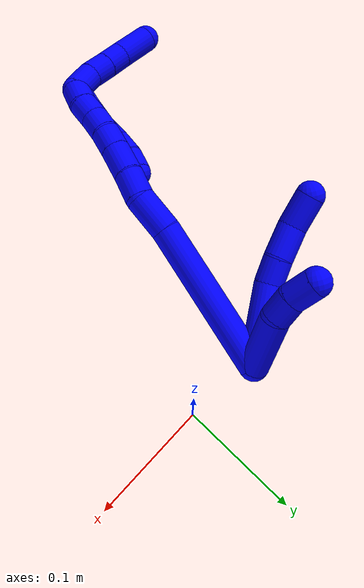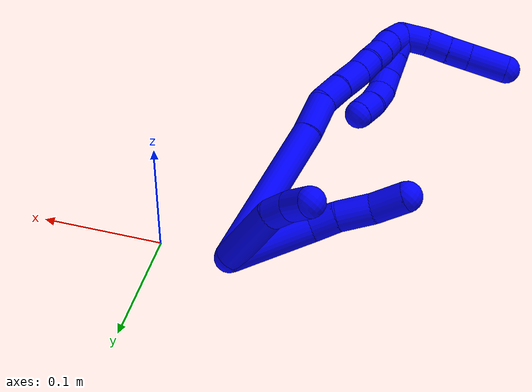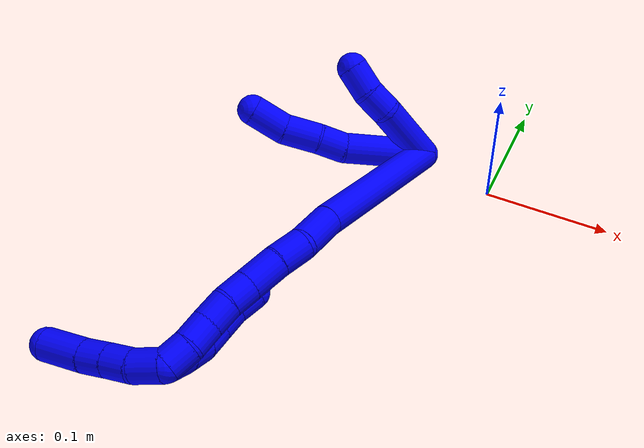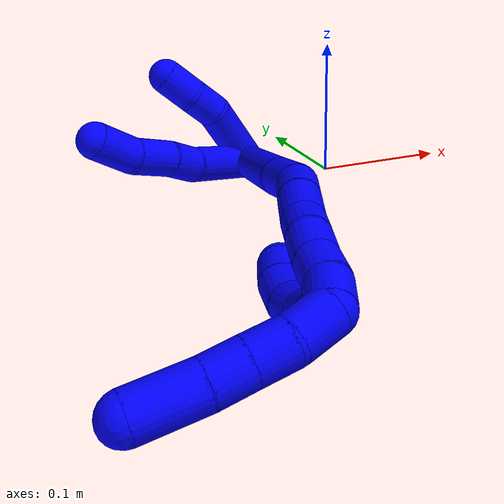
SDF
<sdf version="1.7">
 <world name="default">
  <model name="1">
   <static>0</static>
   <link name="1">
    <collision name="collision-cylinder-e_1_2_8">
     <pose>-0.016127 0.005011 0.029922 -0.16593 -0.488571 0.041449</pose>
     <geometry><cylinder><radius>0.0125</radius><length>0.068716</length></cylinder></geometry>
     <surface>
      <friction><ode><mu>1.16</mu><mu2>1.16</mu2><slip1>0</slip1><slip2>0</slip2></ode></friction>
      <contact><ode><kp>1e+06</kp><kd>1</kd><max_vel>0</max_vel><min_depth>0.001</min_depth></ode></contact>
     </surface>
    </collision>
    <visual name="visual-cylinder-e_1_2_8">
     <pose>-0.016127 0.005011 0.029922 -0.16593 -0.488571 0.041449</pose>
     <geometry><cylinder><radius>0.0125</radius><length>0.068716</length></cylinder></geometry>
     <material><ambient>0 0 1 1</ambient></material>
    </visual>
    <collision name="collision-cylinder-e_2_8_9">
     <pose>-0.036599 0.014389 0.069245 -0.434826 -0.397012 0.088814</pose>
     <geometry><cylinder><radius>0.0125</radius><length>0.02248</length></cylinder></geometry>
     <surface>
      <friction><ode><mu>1.16</mu><mu2>1.16</mu2><slip1>0</slip1><slip2>0</slip2></ode></friction>
      <contact><ode><kp>1e+06</kp><kd>1</kd><max_vel>0</max_vel><min_depth>0.001</min_depth></ode></contact>
     </surface>
    </collision>
    <visual name="visual-cylinder-e_2_8_9">
     <pose>-0.036599 0.014389 0.069245 -0.434826 -0.397012 0.088814</pose>
     <geometry><cylinder><radius>0.0125</radius><length>0.02248</length></cylinder></geometry>
     <material><ambient>0 0 1 1</ambient></material>
    </visual>
    <collision name="collision-cylinder-e_3_9_10">
     <pose>-0.0487 0.02391 0.089936 -0.428348 -0.558482 0.124573</pose>
     <geometry><cylinder><radius>0.0125</radius><length>0.02927</length></cylinder></geometry>
     <surface>
      <friction><ode><mu>1.16</mu><mu2>1.16</mu2><slip1>0</slip1><slip2>0</slip2></ode></friction>
      <contact><ode><kp>1e+06</kp><kd>1</kd><max_vel>0</max_vel><min_depth>0.001</min_depth></ode></contact>
     </surface>
    </collision>
    <visual name="visual-cylinder-e_3_9_10">
     <pose>-0.0487 0.02391 0.089936 -0.428348 -0.558482 0.124573</pose>
     <geometry><cylinder><radius>0.0125</radius><length>0.02927</length></cylinder></geometry>
     <material><ambient>0 0 1 1</ambient></material>
    </visual>
    <collision name="collision-cylinder-e_4_10_6">
     <pose>-0.061552 0.037446 0.112265 -0.649314 -0.352377 0.119698</pose>
     <geometry><cylinder><radius>0.0125</radius><length>0.029534</length></cylinder></geometry>
     <surface>
      <friction><ode><mu>1.16</mu><mu2>1.16</mu2><slip1>0</slip1><slip2>0</slip2></ode></friction>
      <contact><ode><kp>1e+06</kp><kd>1</kd><max_vel>0</max_vel><min_depth>0.001</min_depth></ode></contact>
     </surface>
    </collision>
    <visual name="visual-cylinder-e_4_10_6">
     <pose>-0.061552 0.037446 0.112265 -0.649314 -0.352377 0.119698</pose>
     <geometry><cylinder><radius>0.0125</radius><length>0.029534</length></cylinder></geometry>
     <material><ambient>0 0 1 1</ambient></material>
    </visual>
    <collision name="collision-cylinder-e_1_2_11">
     <pose>0.00219 0.017282 0.021748 -0.671466 0.07868 -0.027467</pose>
     <geometry><cylinder><radius>0.0125</radius><length>0.055729</length></cylinder></geometry>
     <surface>
      <friction><ode><mu>1.16</mu><mu2>1.16</mu2><slip1>0</slip1><slip2>0</slip2></ode></friction>
      <contact><ode><kp>1e+06</kp><kd>1</kd><max_vel>0</max_vel><min_depth>0.001</min_depth></ode></contact>
     </surface>
    </collision>
    <visual name="visual-cylinder-e_1_2_11">
     <pose>0.00219 0.017282 0.021748 -0.671466 0.07868 -0.027467</pose>
     <geometry><cylinder><radius>0.0125</radius><length>0.055729</length></cylinder></geometry>
     <material><ambient>0 0 1 1</ambient></material>
    </visual>
    <collision name="collision-cylinder-e_2_11_12">
     <pose>0.002173 0.04215 0.050283 -0.84098 -0.21355 0.095782</pose>
     <geometry><cylinder><radius>0.0125</radius><length>0.020833</length></cylinder></geometry>
     <surface>
      <friction><ode><mu>1.16</mu><mu2>1.16</mu2><slip1>0</slip1><slip2>0</slip2></ode></friction>
      <contact><ode><kp>1e+06</kp><kd>1</kd><max_vel>0</max_vel><min_depth>0.001</min_depth></ode></contact>
     </surface>
    </collision>
    <visual name="visual-cylinder-e_2_11_12">
     <pose>0.002173 0.04215 0.050283 -0.84098 -0.21355 0.095782</pose>
     <geometry><cylinder><radius>0.0125</radius><length>0.020833</length></cylinder></geometry>
     <material><ambient>0 0 1 1</ambient></material>
    </visual>
    <collision name="collision-cylinder-e_3_12_5">
     <pose>-0.002565 0.060053 0.062022 -1.12326 -0.217627 0.137263</pose>
     <geometry><cylinder><radius>0.0125</radius><length>0.023438</length></cylinder></geometry>
     <surface>
      <friction><ode><mu>1.16</mu><mu2>1.16</mu2><slip1>0</slip1><slip2>0</slip2></ode></friction>
      <contact><ode><kp>1e+06</kp><kd>1</kd><max_vel>0</max_vel><min_depth>0.001</min_depth></ode></contact>
     </surface>
    </collision>
    <visual name="visual-cylinder-e_3_12_5">
     <pose>-0.002565 0.060053 0.062022 -1.12326 -0.217627 0.137263</pose>
     <geometry><cylinder><radius>0.0125</radius><length>0.023438</length></cylinder></geometry>
     <material><ambient>0 0 1 1</ambient></material>
    </visual>
    <collision name="collision-cylinder-e_1_2_13">
     <pose>0.003767 -0.02588 0.061416 0.398811 0.056456 0.011412</pose>
     <geometry><cylinder><radius>0.0125</radius><length>0.133504</length></cylinder></geometry>
     <surface>
      <friction><ode><mu>1.16</mu><mu2>1.16</mu2><slip1>0</slip1><slip2>0</slip2></ode></friction>
      <contact><ode><kp>1e+06</kp><kd>1</kd><max_vel>0</max_vel><min_depth>0.001</min_depth></ode></contact>
     </surface>
    </collision>
    <visual name="visual-cylinder-e_1_2_13">
     <pose>0.003767 -0.02588 0.061416 0.398811 0.056456 0.011412</pose>
     <geometry><cylinder><radius>0.0125</radius><length>0.133504</length></cylinder></geometry>
     <material><ambient>0 0 1 1</ambient></material>
    </visual>
    <collision name="collision-cylinder-e_2_13_14">
     <pose>0.009622 -0.059782 0.137806 0.491824 0.122326 0.030739</pose>
     <geometry><cylinder><radius>0.0125</radius><length>0.034231</length></cylinder></geometry>
     <surface>
      <friction><ode><mu>1.16</mu><mu2>1.16</mu2><slip1>0</slip1><slip2>0</slip2></ode></friction>
      <contact><ode><kp>1e+06</kp><kd>1</kd><max_vel>0</max_vel><min_depth>0.001</min_depth></ode></contact>
     </surface>
    </collision>
    <visual name="visual-cylinder-e_2_13_14">
     <pose>0.009622 -0.059782 0.137806 0.491824 0.122326 0.030739</pose>
     <geometry><cylinder><radius>0.0125</radius><length>0.034231</length></cylinder></geometry>
     <material><ambient>0 0 1 1</ambient></material>
    </visual>
    <collision name="collision-cylinder-e_3_14_15">
     <pose>0.009191 -0.073282 0.163334 0.47868 -0.208744 -0.051112</pose>
     <geometry><cylinder><radius>0.0125</radius><length>0.02431</length></cylinder></geometry>
     <surface>
      <friction><ode><mu>1.16</mu><mu2>1.16</mu2><slip1>0</slip1><slip2>0</slip2></ode></friction>
      <contact><ode><kp>1e+06</kp><kd>1</kd><max_vel>0</max_vel><min_depth>0.001</min_depth></ode></contact>
     </surface>
    </collision>
    <visual name="visual-cylinder-e_3_14_15">
     <pose>0.009191 -0.073282 0.163334 0.47868 -0.208744 -0.051112</pose>
     <geometry><cylinder><radius>0.0125</radius><length>0.02431</length></cylinder></geometry>
     <material><ambient>0 0 1 1</ambient></material>
    </visual>
    <collision name="collision-cylinder-e_4_15_16">
     <pose>0.003272 -0.086154 0.185184 0.579675 -0.246775 -0.073939</pose>
     <geometry><cylinder><radius>0.0125</radius><length>0.027845</length></cylinder></geometry>
     <surface>
      <friction><ode><mu>1.16</mu><mu2>1.16</mu2><slip1>0</slip1><slip2>0</slip2></ode></friction>
      <contact><ode><kp>1e+06</kp><kd>1</kd><max_vel>0</max_vel><min_depth>0.001</min_depth></ode></contact>
     </surface>
    </collision>
    <visual name="visual-cylinder-e_4_15_16">
     <pose>0.003272 -0.086154 0.185184 0.579675 -0.246775 -0.073939</pose>
     <geometry><cylinder><radius>0.0125</radius><length>0.027845</length></cylinder></geometry>
     <material><ambient>0 0 1 1</ambient></material>
    </visual>
    <collision name="collision-cylinder-e_5_16_17">
     <pose>-0.00176 -0.098675 0.204938 0.544805 -0.163384 -0.045735</pose>
     <geometry><cylinder><radius>0.0125</radius><length>0.020049</length></cylinder></geometry>
     <surface>
      <friction><ode><mu>1.16</mu><mu2>1.16</mu2><slip1>0</slip1><slip2>0</slip2></ode></friction>
      <contact><ode><kp>1e+06</kp><kd>1</kd><max_vel>0</max_vel><min_depth>0.001</min_depth></ode></contact>
     </surface>
    </collision>
    <visual name="visual-cylinder-e_5_16_17">
     <pose>-0.00176 -0.098675 0.204938 0.544805 -0.163384 -0.045735</pose>
     <geometry><cylinder><radius>0.0125</radius><length>0.020049</length></cylinder></geometry>
     <material><ambient>0 0 1 1</ambient></material>
    </visual>
    <collision name="collision-cylinder-e_6_17_18">
     <pose>-0.005635 -0.110251 0.220712 0.722678 -0.226196 -0.0858</pose>
     <geometry><cylinder><radius>0.0125</radius><length>0.020015</length></cylinder></geometry>
     <surface>
      <friction><ode><mu>1.16</mu><mu2>1.16</mu2><slip1>0</slip1><slip2>0</slip2></ode></friction>
      <contact><ode><kp>1e+06</kp><kd>1</kd><max_vel>0</max_vel><min_depth>0.001</min_depth></ode></contact>
     </surface>
    </collision>
    <visual name="visual-cylinder-e_6_17_18">
     <pose>-0.005635 -0.110251 0.220712 0.722678 -0.226196 -0.0858</pose>
     <geometry><cylinder><radius>0.0125</radius><length>0.020015</length></cylinder></geometry>
     <material><ambient>0 0 1 1</ambient></material>
    </visual>
    <collision name="collision-cylinder-e_7_18_19">
     <pose>-0.009195 -0.12316 0.235574 0.707818 -0.131732 -0.048731</pose>
     <geometry><cylinder><radius>0.0125</radius><length>0.02004</length></cylinder></geometry>
     <surface>
      <friction><ode><mu>1.16</mu><mu2>1.16</mu2><slip1>0</slip1><slip2>0</slip2></ode></friction>
      <contact><ode><kp>1e+06</kp><kd>1</kd><max_vel>0</max_vel><min_depth>0.001</min_depth></ode></contact>
     </surface>
    </collision>
    <visual name="visual-cylinder-e_7_18_19">
     <pose>-0.009195 -0.12316 0.235574 0.707818 -0.131732 -0.048731</pose>
     <geometry><cylinder><radius>0.0125</radius><length>0.02004</length></cylinder></geometry>
     <material><ambient>0 0 1 1</ambient></material>
    </visual>
    <collision name="collision-cylinder-e_8_19_1">
     <pose>-0.013851 -0.135175 0.250739 0.630261 -0.340329 -0.111912</pose>
     <geometry><cylinder><radius>0.0125</radius><length>0.020006</length></cylinder></geometry>
     <surface>
      <friction><ode><mu>1.16</mu><mu2>1.16</mu2><slip1>0</slip1><slip2>0</slip2></ode></friction>
      <contact><ode><kp>1e+06</kp><kd>1</kd><max_vel>0</max_vel><min_depth>0.001</min_depth></ode></contact>
     </surface>
    </collision>
    <visual name="visual-cylinder-e_8_19_1">
     <pose>-0.013851 -0.135175 0.250739 0.630261 -0.340329 -0.111912</pose>
     <geometry><cylinder><radius>0.0125</radius><length>0.020006</length></cylinder></geometry>
     <material><ambient>0 0 1 1</ambient></material>
    </visual>
    <collision name="collision-cylinder-e_1_1_20">
     <pose>-0.027749 -0.140197 0.264087 -0.093122 -1.07175 0.055325</pose>
     <geometry><cylinder><radius>0.0125</radius><length>0.024053</length></cylinder></geometry>
     <surface>
      <friction><ode><mu>1.16</mu><mu2>1.16</mu2><slip1>0</slip1><slip2>0</slip2></ode></friction>
      <contact><ode><kp>1e+06</kp><kd>1</kd><max_vel>0</max_vel><min_depth>0.001</min_depth></ode></contact>
     </surface>
    </collision>
    <visual name="visual-cylinder-e_1_1_20">
     <pose>-0.027749 -0.140197 0.264087 -0.093122 -1.07175 0.055325</pose>
     <geometry><cylinder><radius>0.0125</radius><length>0.024053</length></cylinder></geometry>
     <material><ambient>0 0 1 1</ambient></material>
    </visual>
    <collision name="collision-cylinder-e_2_20_21">
     <pose>-0.047768 -0.137304 0.273341 -0.589943 -1.14944 0.388594</pose>
     <geometry><cylinder><radius>0.0125</radius><length>0.020731</length></cylinder></geometry>
     <surface>
      <friction><ode><mu>1.16</mu><mu2>1.16</mu2><slip1>0</slip1><slip2>0</slip2></ode></friction>
      <contact><ode><kp>1e+06</kp><kd>1</kd><max_vel>0</max_vel><min_depth>0.001</min_depth></ode></contact>
     </surface>
    </collision>
    <visual name="visual-cylinder-e_2_20_21">
     <pose>-0.047768 -0.137304 0.273341 -0.589943 -1.14944 0.388594</pose>
     <geometry><cylinder><radius>0.0125</radius><length>0.020731</length></cylinder></geometry>
     <material><ambient>0 0 1 1</ambient></material>
    </visual>
    <collision name="collision-cylinder-e_3_21_22">
     <pose>-0.066393 -0.132774 0.280587 -0.527991 -1.13123 0.339869</pose>
     <geometry><cylinder><radius>0.0125</radius><length>0.020256</length></cylinder></geometry>
     <surface>
      <friction><ode><mu>1.16</mu><mu2>1.16</mu2><slip1>0</slip1><slip2>0</slip2></ode></friction>
      <contact><ode><kp>1e+06</kp><kd>1</kd><max_vel>0</max_vel><min_depth>0.001</min_depth></ode></contact>
     </surface>
    </collision>
    <visual name="visual-cylinder-e_3_21_22">
     <pose>-0.066393 -0.132774 0.280587 -0.527991 -1.13123 0.339869</pose>
     <geometry><cylinder><radius>0.0125</radius><length>0.020256</length></cylinder></geometry>
     <material><ambient>0 0 1 1</ambient></material>
    </visual>
    <collision name="collision-cylinder-e_4_22_4">
     <pose>-0.091088 -0.125544 0.290536 -0.682259 -1.09399 0.42583</pose>
     <geometry><cylinder><radius>0.0125</radius><length>0.034959</length></cylinder></geometry>
     <surface>
      <friction><ode><mu>1.16</mu><mu2>1.16</mu2><slip1>0</slip1><slip2>0</slip2></ode></friction>
      <contact><ode><kp>1e+06</kp><kd>1</kd><max_vel>0</max_vel><min_depth>0.001</min_depth></ode></contact>
     </surface>
    </collision>
    <visual name="visual-cylinder-e_4_22_4">
     <pose>-0.091088 -0.125544 0.290536 -0.682259 -1.09399 0.42583</pose>
     <geometry><cylinder><radius>0.0125</radius><length>0.034959</length></cylinder></geometry>
     <material><ambient>0 0 1 1</ambient></material>
    </visual>
    <collision name="collision-cylinder-e_1_1_23">
     <pose>-0.02024 -0.139047 0.248983 -2.96362 -0.310002 2.10393</pose>
     <geometry><cylinder><radius>0.0125</radius><length>0.02</length></cylinder></geometry>
     <surface>
      <friction><ode><mu>1.16</mu><mu2>1.16</mu2><slip1>0</slip1><slip2>0</slip2></ode></friction>
      <contact><ode><kp>1e+06</kp><kd>1</kd><max_vel>0</max_vel><min_depth>0.001</min_depth></ode></contact>
     </surface>
    </collision>
    <visual name="visual-cylinder-e_1_1_23">
     <pose>-0.02024 -0.139047 0.248983 -2.96362 -0.310002 2.10393</pose>
     <geometry><cylinder><radius>0.0125</radius><length>0.02</length></cylinder></geometry>
     <material><ambient>0 0 1 1</ambient></material>
    </visual>
    <collision name="collision-cylinder-e_2_23_24">
     <pose>-0.025965 -0.134634 0.230368 -2.85473 -0.270683 1.512</pose>
     <geometry><cylinder><radius>0.0125</radius><length>0.02</length></cylinder></geometry>
     <surface>
      <friction><ode><mu>1.16</mu><mu2>1.16</mu2><slip1>0</slip1><slip2>0</slip2></ode></friction>
      <contact><ode><kp>1e+06</kp><kd>1</kd><max_vel>0</max_vel><min_depth>0.001</min_depth></ode></contact>
     </surface>
    </collision>
    <visual name="visual-cylinder-e_2_23_24">
     <pose>-0.025965 -0.134634 0.230368 -2.85473 -0.270683 1.512</pose>
     <geometry><cylinder><radius>0.0125</radius><length>0.02</length></cylinder></geometry>
     <material><ambient>0 0 1 1</ambient></material>
    </visual>
    <collision name="collision-cylinder-e_3_24_25">
     <pose>-0.03057 -0.126836 0.212727 -2.59839 -0.194369 0.673496</pose>
     <geometry><cylinder><radius>0.0125</radius><length>0.02</length></cylinder></geometry>
     <surface>
      <friction><ode><mu>1.16</mu><mu2>1.16</mu2><slip1>0</slip1><slip2>0</slip2></ode></friction>
      <contact><ode><kp>1e+06</kp><kd>1</kd><max_vel>0</max_vel><min_depth>0.001</min_depth></ode></contact>
     </surface>
    </collision>
    <visual name="visual-cylinder-e_3_24_25">
     <pose>-0.03057 -0.126836 0.212727 -2.59839 -0.194369 0.673496</pose>
     <geometry><cylinder><radius>0.0125</radius><length>0.02</length></cylinder></geometry>
     <material><ambient>0 0 1 1</ambient></material>
    </visual>
    <collision name="collision-cylinder-e_4_25_26">
     <pose>-0.031599 -0.115508 0.196579 -2.46225 0.090423 -0.25468</pose>
     <geometry><cylinder><radius>0.0125</radius><length>0.02</length></cylinder></geometry>
     <surface>
      <friction><ode><mu>1.16</mu><mu2>1.16</mu2><slip1>0</slip1><slip2>0</slip2></ode></friction>
      <contact><ode><kp>1e+06</kp><kd>1</kd><max_vel>0</max_vel><min_depth>0.001</min_depth></ode></contact>
     </surface>
    </collision>
    <visual name="visual-cylinder-e_4_25_26">
     <pose>-0.031599 -0.115508 0.196579 -2.46225 0.090423 -0.25468</pose>
     <geometry><cylinder><radius>0.0125</radius><length>0.02</length></cylinder></geometry>
     <material><ambient>0 0 1 1</ambient></material>
    </visual>
    <collision name="collision-cylinder-e_5_26_3">
     <pose>-0.028172 -0.104206 0.180574 -2.59319 0.255067 -0.855439</pose>
     <geometry><cylinder><radius>0.0125</radius><length>0.02</length></cylinder></geometry>
     <surface>
      <friction><ode><mu>1.16</mu><mu2>1.16</mu2><slip1>0</slip1><slip2>0</slip2></ode></friction>
      <contact><ode><kp>1e+06</kp><kd>1</kd><max_vel>0</max_vel><min_depth>0.001</min_depth></ode></contact>
     </surface>
    </collision>
    <visual name="visual-cylinder-e_5_26_3">
     <pose>-0.028172 -0.104206 0.180574 -2.59319 0.255067 -0.855439</pose>
     <geometry><cylinder><radius>0.0125</radius><length>0.02</length></cylinder></geometry>
     <material><ambient>0 0 1 1</ambient></material>
    </visual>
    <collision name="collision-sphere-3">
     <pose>-0.025649 -0.099161 0.172316 0 -0 0</pose>
     <geometry><sphere><radius>0.0125</radius></sphere></geometry>
     <surface>
      <friction><ode><mu>1.16</mu><mu2>1.16</mu2><slip1>0</slip1><slip2>0</slip2></ode></friction>
      <contact><ode><kp>1e+06</kp><kd>1</kd><max_vel>0</max_vel><min_depth>0.001</min_depth></ode></contact>
     </surface>
    </collision>
    <visual name="visual-sphere-3">
     <pose>-0.025649 -0.099161 0.172316 0 -0 0</pose>
     <geometry><sphere><radius>0.0125</radius></sphere></geometry>
     <material><ambient>0 0 1 1</ambient></material>
    </visual>
    <collision name="collision-sphere-26">
     <pose>-0.030696 -0.10925 0.188831 0 -0 0</pose>
     <geometry><sphere><radius>0.0125</radius></sphere></geometry>
     <surface>
      <friction><ode><mu>1.16</mu><mu2>1.16</mu2><slip1>0</slip1><slip2>0</slip2></ode></friction>
      <contact><ode><kp>1e+06</kp><kd>1</kd><max_vel>0</max_vel><min_depth>0.001</min_depth></ode></contact>
     </surface>
    </collision>
    <visual name="visual-sphere-26">
     <pose>-0.030696 -0.10925 0.188831 0 -0 0</pose>
     <geometry><sphere><radius>0.0125</radius></sphere></geometry>
     <material><ambient>0 0 1 1</ambient></material>
    </visual>
    <collision name="collision-sphere-25">
     <pose>-0.032502 -0.121765 0.204327 0 -0 0</pose>
     <geometry><sphere><radius>0.0125</radius></sphere></geometry>
     <surface>
      <friction><ode><mu>1.16</mu><mu2>1.16</mu2><slip1>0</slip1><slip2>0</slip2></ode></friction>
      <contact><ode><kp>1e+06</kp><kd>1</kd><max_vel>0</max_vel><min_depth>0.001</min_depth></ode></contact>
     </surface>
    </collision>
    <visual name="visual-sphere-25">
     <pose>-0.032502 -0.121765 0.204327 0 -0 0</pose>
     <geometry><sphere><radius>0.0125</radius></sphere></geometry>
     <material><ambient>0 0 1 1</ambient></material>
    </visual>
    <collision name="collision-sphere-24">
     <pose>-0.028639 -0.131908 0.221126 0 -0 0</pose>
     <geometry><sphere><radius>0.0125</radius></sphere></geometry>
     <surface>
      <friction><ode><mu>1.16</mu><mu2>1.16</mu2><slip1>0</slip1><slip2>0</slip2></ode></friction>
      <contact><ode><kp>1e+06</kp><kd>1</kd><max_vel>0</max_vel><min_depth>0.001</min_depth></ode></contact>
     </surface>
    </collision>
    <visual name="visual-sphere-24">
     <pose>-0.028639 -0.131908 0.221126 0 -0 0</pose>
     <geometry><sphere><radius>0.0125</radius></sphere></geometry>
     <material><ambient>0 0 1 1</ambient></material>
    </visual>
    <collision name="collision-sphere-23">
     <pose>-0.023291 -0.137361 0.23961 0 -0 0</pose>
     <geometry><sphere><radius>0.0125</radius></sphere></geometry>
     <surface>
      <friction><ode><mu>1.16</mu><mu2>1.16</mu2><slip1>0</slip1><slip2>0</slip2></ode></friction>
      <contact><ode><kp>1e+06</kp><kd>1</kd><max_vel>0</max_vel><min_depth>0.001</min_depth></ode></contact>
     </surface>
    </collision>
    <visual name="visual-sphere-23">
     <pose>-0.023291 -0.137361 0.23961 0 -0 0</pose>
     <geometry><sphere><radius>0.0125</radius></sphere></geometry>
     <material><ambient>0 0 1 1</ambient></material>
    </visual>
    <collision name="collision-sphere-4">
     <pose>-0.106618 -0.120486 0.296763 0 -0 0</pose>
     <geometry><sphere><radius>0.0125</radius></sphere></geometry>
     <surface>
      <friction><ode><mu>1.16</mu><mu2>1.16</mu2><slip1>0</slip1><slip2>0</slip2></ode></friction>
      <contact><ode><kp>1e+06</kp><kd>1</kd><max_vel>0</max_vel><min_depth>0.001</min_depth></ode></contact>
     </surface>
    </collision>
    <visual name="visual-sphere-4">
     <pose>-0.106618 -0.120486 0.296763 0 -0 0</pose>
     <geometry><sphere><radius>0.0125</radius></sphere></geometry>
     <material><ambient>0 0 1 1</ambient></material>
    </visual>
    <collision name="collision-sphere-22">
     <pose>-0.075558 -0.130602 0.28431 0 -0 0</pose>
     <geometry><sphere><radius>0.0125</radius></sphere></geometry>
     <surface>
      <friction><ode><mu>1.16</mu><mu2>1.16</mu2><slip1>0</slip1><slip2>0</slip2></ode></friction>
      <contact><ode><kp>1e+06</kp><kd>1</kd><max_vel>0</max_vel><min_depth>0.001</min_depth></ode></contact>
     </surface>
    </collision>
    <visual name="visual-sphere-22">
     <pose>-0.075558 -0.130602 0.28431 0 -0 0</pose>
     <geometry><sphere><radius>0.0125</radius></sphere></geometry>
     <material><ambient>0 0 1 1</ambient></material>
    </visual>
    <collision name="collision-sphere-21">
     <pose>-0.057227 -0.134945 0.276864 0 -0 0</pose>
     <geometry><sphere><radius>0.0125</radius></sphere></geometry>
     <surface>
      <friction><ode><mu>1.16</mu><mu2>1.16</mu2><slip1>0</slip1><slip2>0</slip2></ode></friction>
      <contact><ode><kp>1e+06</kp><kd>1</kd><max_vel>0</max_vel><min_depth>0.001</min_depth></ode></contact>
     </surface>
    </collision>
    <visual name="visual-sphere-21">
     <pose>-0.057227 -0.134945 0.276864 0 -0 0</pose>
     <geometry><sphere><radius>0.0125</radius></sphere></geometry>
     <material><ambient>0 0 1 1</ambient></material>
    </visual>
    <collision name="collision-sphere-20">
     <pose>-0.038309 -0.139662 0.269818 0 -0 0</pose>
     <geometry><sphere><radius>0.0125</radius></sphere></geometry>
     <surface>
      <friction><ode><mu>1.16</mu><mu2>1.16</mu2><slip1>0</slip1><slip2>0</slip2></ode></friction>
      <contact><ode><kp>1e+06</kp><kd>1</kd><max_vel>0</max_vel><min_depth>0.001</min_depth></ode></contact>
     </surface>
    </collision>
    <visual name="visual-sphere-20">
     <pose>-0.038309 -0.139662 0.269818 0 -0 0</pose>
     <geometry><sphere><radius>0.0125</radius></sphere></geometry>
     <material><ambient>0 0 1 1</ambient></material>
    </visual>
    <collision name="collision-sphere-11">
     <pose>0.00438 0.034563 0.043496 0 -0 0</pose>
     <geometry><sphere><radius>0.0125</radius></sphere></geometry>
     <surface>
      <friction><ode><mu>1.16</mu><mu2>1.16</mu2><slip1>0</slip1><slip2>0</slip2></ode></friction>
      <contact><ode><kp>1e+06</kp><kd>1</kd><max_vel>0</max_vel><min_depth>0.001</min_depth></ode></contact>
     </surface>
    </collision>
    <visual name="visual-sphere-11">
     <pose>0.00438 0.034563 0.043496 0 -0 0</pose>
     <geometry><sphere><radius>0.0125</radius></sphere></geometry>
     <material><ambient>0 0 1 1</ambient></material>
    </visual>
    <collision name="collision-sphere-6">
     <pose>-0.066648 0.045826 0.123304 0 -0 0</pose>
     <geometry><sphere><radius>0.0125</radius></sphere></geometry>
     <surface>
      <friction><ode><mu>1.16</mu><mu2>1.16</mu2><slip1>0</slip1><slip2>0</slip2></ode></friction>
      <contact><ode><kp>1e+06</kp><kd>1</kd><max_vel>0</max_vel><min_depth>0.001</min_depth></ode></contact>
     </surface>
    </collision>
    <visual name="visual-sphere-6">
     <pose>-0.066648 0.045826 0.123304 0 -0 0</pose>
     <geometry><sphere><radius>0.0125</radius></sphere></geometry>
     <material><ambient>0 0 1 1</ambient></material>
    </visual>
    <collision name="collision-sphere-10">
     <pose>-0.056455 0.029066 0.101226 0 -0 0</pose>
     <geometry><sphere><radius>0.0125</radius></sphere></geometry>
     <surface>
      <friction><ode><mu>1.16</mu><mu2>1.16</mu2><slip1>0</slip1><slip2>0</slip2></ode></friction>
      <contact><ode><kp>1e+06</kp><kd>1</kd><max_vel>0</max_vel><min_depth>0.001</min_depth></ode></contact>
     </surface>
    </collision>
    <visual name="visual-sphere-10">
     <pose>-0.056455 0.029066 0.101226 0 -0 0</pose>
     <geometry><sphere><radius>0.0125</radius></sphere></geometry>
     <material><ambient>0 0 1 1</ambient></material>
    </visual>
    <collision name="collision-sphere-9">
     <pose>-0.040945 0.018755 0.078646 0 -0 0</pose>
     <geometry><sphere><radius>0.0125</radius></sphere></geometry>
     <surface>
      <friction><ode><mu>1.16</mu><mu2>1.16</mu2><slip1>0</slip1><slip2>0</slip2></ode></friction>
      <contact><ode><kp>1e+06</kp><kd>1</kd><max_vel>0</max_vel><min_depth>0.001</min_depth></ode></contact>
     </surface>
    </collision>
    <visual name="visual-sphere-9">
     <pose>-0.040945 0.018755 0.078646 0 -0 0</pose>
     <geometry><sphere><radius>0.0125</radius></sphere></geometry>
     <material><ambient>0 0 1 1</ambient></material>
    </visual>
    <collision name="collision-sphere-2">
     <geometry><sphere><radius>0.0125</radius></sphere></geometry>
     <surface>
      <friction><ode><mu>1.16</mu><mu2>1.16</mu2><slip1>0</slip1><slip2>0</slip2></ode></friction>
      <contact><ode><kp>1e+06</kp><kd>1</kd><max_vel>0</max_vel><min_depth>0.001</min_depth></ode></contact>
     </surface>
    </collision>
    <visual name="visual-sphere-2">
     <geometry><sphere><radius>0.0125</radius></sphere></geometry>
     <material><ambient>0 0 1 1</ambient></material>
    </visual>
    <collision name="collision-sphere-19">
     <pose>-0.010512 -0.129618 0.243121 0 -0 0</pose>
     <geometry><sphere><radius>0.0125</radius></sphere></geometry>
     <surface>
      <friction><ode><mu>1.16</mu><mu2>1.16</mu2><slip1>0</slip1><slip2>0</slip2></ode></friction>
      <contact><ode><kp>1e+06</kp><kd>1</kd><max_vel>0</max_vel><min_depth>0.001</min_depth></ode></contact>
     </surface>
    </collision>
    <visual name="visual-sphere-19">
     <pose>-0.010512 -0.129618 0.243121 0 -0 0</pose>
     <geometry><sphere><radius>0.0125</radius></sphere></geometry>
     <material><ambient>0 0 1 1</ambient></material>
    </visual>
    <collision name="collision-sphere-8">
     <pose>-0.032253 0.010022 0.059843 0 -0 0</pose>
     <geometry><sphere><radius>0.0125</radius></sphere></geometry>
     <surface>
      <friction><ode><mu>1.16</mu><mu2>1.16</mu2><slip1>0</slip1><slip2>0</slip2></ode></friction>
      <contact><ode><kp>1e+06</kp><kd>1</kd><max_vel>0</max_vel><min_depth>0.001</min_depth></ode></contact>
     </surface>
    </collision>
    <visual name="visual-sphere-8">
     <pose>-0.032253 0.010022 0.059843 0 -0 0</pose>
     <geometry><sphere><radius>0.0125</radius></sphere></geometry>
     <material><ambient>0 0 1 1</ambient></material>
    </visual>
    <collision name="collision-sphere-12">
     <pose>-3.5e-05 0.049738 0.05707 0 -0 0</pose>
     <geometry><sphere><radius>0.0125</radius></sphere></geometry>
     <surface>
      <friction><ode><mu>1.16</mu><mu2>1.16</mu2><slip1>0</slip1><slip2>0</slip2></ode></friction>
      <contact><ode><kp>1e+06</kp><kd>1</kd><max_vel>0</max_vel><min_depth>0.001</min_depth></ode></contact>
     </surface>
    </collision>
    <visual name="visual-sphere-12">
     <pose>-3.5e-05 0.049738 0.05707 0 -0 0</pose>
     <geometry><sphere><radius>0.0125</radius></sphere></geometry>
     <material><ambient>0 0 1 1</ambient></material>
    </visual>
    <collision name="collision-sphere-5">
     <pose>-0.005096 0.070369 0.066974 0 -0 0</pose>
     <geometry><sphere><radius>0.0125</radius></sphere></geometry>
     <surface>
      <friction><ode><mu>1.16</mu><mu2>1.16</mu2><slip1>0</slip1><slip2>0</slip2></ode></friction>
      <contact><ode><kp>1e+06</kp><kd>1</kd><max_vel>0</max_vel><min_depth>0.001</min_depth></ode></contact>
     </surface>
    </collision>
    <visual name="visual-sphere-5">
     <pose>-0.005096 0.070369 0.066974 0 -0 0</pose>
     <geometry><sphere><radius>0.0125</radius></sphere></geometry>
     <material><ambient>0 0 1 1</ambient></material>
    </visual>
    <collision name="collision-sphere-13">
     <pose>0.007533 -0.05176 0.122831 0 -0 0</pose>
     <geometry><sphere><radius>0.0125</radius></sphere></geometry>
     <surface>
      <friction><ode><mu>1.16</mu><mu2>1.16</mu2><slip1>0</slip1><slip2>0</slip2></ode></friction>
      <contact><ode><kp>1e+06</kp><kd>1</kd><max_vel>0</max_vel><min_depth>0.001</min_depth></ode></contact>
     </surface>
    </collision>
    <visual name="visual-sphere-13">
     <pose>0.007533 -0.05176 0.122831 0 -0 0</pose>
     <geometry><sphere><radius>0.0125</radius></sphere></geometry>
     <material><ambient>0 0 1 1</ambient></material>
    </visual>
    <collision name="collision-sphere-14">
     <pose>0.01171 -0.067805 0.15278 0 -0 0</pose>
     <geometry><sphere><radius>0.0125</radius></sphere></geometry>
     <surface>
      <friction><ode><mu>1.16</mu><mu2>1.16</mu2><slip1>0</slip1><slip2>0</slip2></ode></friction>
      <contact><ode><kp>1e+06</kp><kd>1</kd><max_vel>0</max_vel><min_depth>0.001</min_depth></ode></contact>
     </surface>
    </collision>
    <visual name="visual-sphere-14">
     <pose>0.01171 -0.067805 0.15278 0 -0 0</pose>
     <geometry><sphere><radius>0.0125</radius></sphere></geometry>
     <material><ambient>0 0 1 1</ambient></material>
    </visual>
    <collision name="collision-sphere-15">
     <pose>0.006672 -0.078759 0.173889 0 -0 0</pose>
     <geometry><sphere><radius>0.0125</radius></sphere></geometry>
     <surface>
      <friction><ode><mu>1.16</mu><mu2>1.16</mu2><slip1>0</slip1><slip2>0</slip2></ode></friction>
      <contact><ode><kp>1e+06</kp><kd>1</kd><max_vel>0</max_vel><min_depth>0.001</min_depth></ode></contact>
     </surface>
    </collision>
    <visual name="visual-sphere-15">
     <pose>0.006672 -0.078759 0.173889 0 -0 0</pose>
     <geometry><sphere><radius>0.0125</radius></sphere></geometry>
     <material><ambient>0 0 1 1</ambient></material>
    </visual>
    <collision name="collision-sphere-16">
     <pose>-0.000129 -0.093549 0.196479 0 -0 0</pose>
     <geometry><sphere><radius>0.0125</radius></sphere></geometry>
     <surface>
      <friction><ode><mu>1.16</mu><mu2>1.16</mu2><slip1>0</slip1><slip2>0</slip2></ode></friction>
      <contact><ode><kp>1e+06</kp><kd>1</kd><max_vel>0</max_vel><min_depth>0.001</min_depth></ode></contact>
     </surface>
    </collision>
    <visual name="visual-sphere-16">
     <pose>-0.000129 -0.093549 0.196479 0 -0 0</pose>
     <geometry><sphere><radius>0.0125</radius></sphere></geometry>
     <material><ambient>0 0 1 1</ambient></material>
    </visual>
    <collision name="collision-sphere-17">
     <pose>-0.003391 -0.103801 0.213397 0 -0 0</pose>
     <geometry><sphere><radius>0.0125</radius></sphere></geometry>
     <surface>
      <friction><ode><mu>1.16</mu><mu2>1.16</mu2><slip1>0</slip1><slip2>0</slip2></ode></friction>
      <contact><ode><kp>1e+06</kp><kd>1</kd><max_vel>0</max_vel><min_depth>0.001</min_depth></ode></contact>
     </surface>
    </collision>
    <visual name="visual-sphere-17">
     <pose>-0.003391 -0.103801 0.213397 0 -0 0</pose>
     <geometry><sphere><radius>0.0125</radius></sphere></geometry>
     <material><ambient>0 0 1 1</ambient></material>
    </visual>
    <collision name="collision-sphere-18">
     <pose>-0.007879 -0.116701 0.228027 0 -0 0</pose>
     <geometry><sphere><radius>0.0125</radius></sphere></geometry>
     <surface>
      <friction><ode><mu>1.16</mu><mu2>1.16</mu2><slip1>0</slip1><slip2>0</slip2></ode></friction>
      <contact><ode><kp>1e+06</kp><kd>1</kd><max_vel>0</max_vel><min_depth>0.001</min_depth></ode></contact>
     </surface>
    </collision>
    <visual name="visual-sphere-18">
     <pose>-0.007879 -0.116701 0.228027 0 -0 0</pose>
     <geometry><sphere><radius>0.0125</radius></sphere></geometry>
     <material><ambient>0 0 1 1</ambient></material>
    </visual>
    <collision name="collision-sphere-1">
     <pose>-0.01719 -0.140732 0.258356 0 -0 0</pose>
     <geometry><sphere><radius>0.0125</radius></sphere></geometry>
     <surface>
      <friction><ode><mu>1.16</mu><mu2>1.16</mu2><slip1>0</slip1><slip2>0</slip2></ode></friction>
      <contact><ode><kp>1e+06</kp><kd>1</kd><max_vel>0</max_vel><min_depth>0.001</min_depth></ode></contact>
     </surface>
    </collision>
    <visual name="visual-sphere-1">
     <pose>-0.01719 -0.140732 0.258356 0 -0 0</pose>
     <geometry><sphere><radius>0.0125</radius></sphere></geometry>
     <material><ambient>0 0 1 1</ambient></material>
    </visual>
    <inertial>
     <pose>-0.01793 -0.052025 0.1371 0 -0 0</pose>
     <mass>0.75</mass>
     <inertia>
      <ixx>0.000272</ixx>
      <ixy>0</ixy>
      <ixz>0</ixz>
      <iyy>0.00027</iyy>
      <iyz>0</iyz>
      <izz>0.000109</izz>
     </inertia>
    </inertial>
   </link>
   <pose>-0.061577 0.010775 0.011495 0.922877 -0.655878 -0.116329</pose>
  </model>
 </world>
</sdf>
